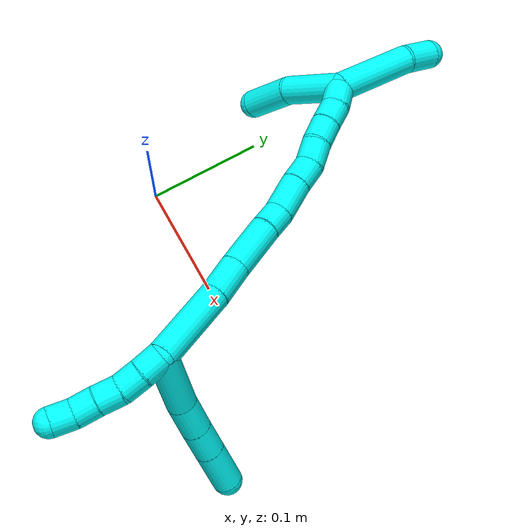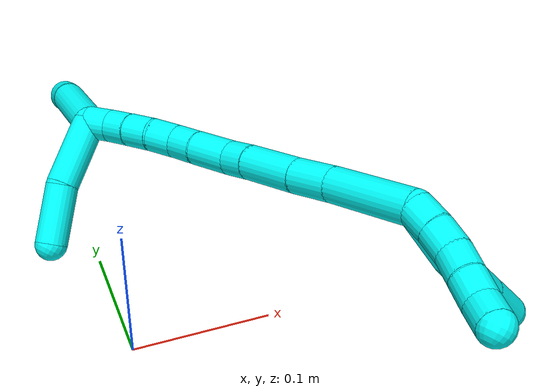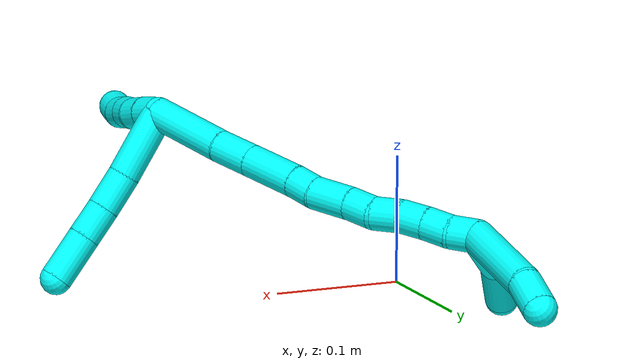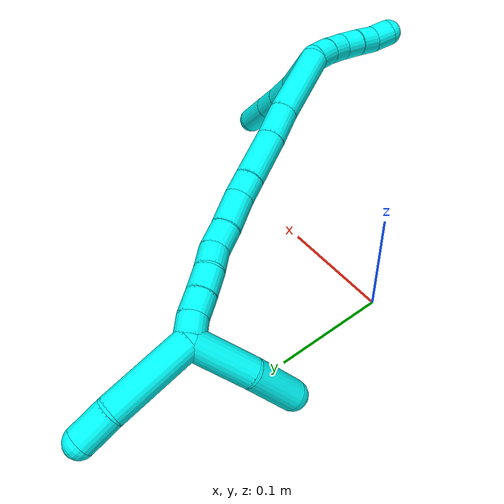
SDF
<sdf version="1.7">
 <world name="default">
  <model name="photoneo_s_sensor">
   <static>1</static>
   <pose>0 0 2 1.57079 1.57079 3.14159</pose>
   <link name="link">
    <inertial><mass>0.1</mass></inertial>
    <sensor name="sensor" type="depth">
     <update_rate>30</update_rate>
     <camera>
      <horizontal_fov>1.22</horizontal_fov>
      <image><width>1920</width><height>1200</height><format>B8G8R8</format></image>
      <clip><near>0.1</near><far>4</far></clip>
      <depth_camera><output>points</output></depth_camera>
     </camera>
     <plugin name="camera_plugin" filename="libgazebo_ros_depth_camera.so">
      <baseline>0.2</baseline>
      <alwaysOn>1</alwaysOn>
      <updateRate>0.0</updateRate>
      <cameraName>camera_ir</cameraName>
      <imageTopicName>/camera/color/image_raw</imageTopicName>
      <cameraInfoTopicName>/camera/color/camera_info</cameraInfoTopicName>
      <depthImageTopicName>/camera/depth/image_raw</depthImageTopicName>
      <depthImageCameraInfoTopicName>/camera/depth/camera_info</depthImageCameraInfoTopicName>
      <pointCloudTopicName>/camera/depth/points</pointCloudTopicName>
      <frameName>fr_optical</frameName>
      <pointCloudCutoff>0.1</pointCloudCutoff>
      <pointCloudCutoffMax>2.0</pointCloudCutoffMax>
      <distortionK1>0</distortionK1>
      <distortionK2>0</distortionK2>
      <distortionK3>0</distortionK3>
      <distortionT1>0</distortionT1>
      <distortionT2>0</distortionT2>
      <CxPrime>0</CxPrime>
      <Cx>0</Cx>
      <Cy>0</Cy>
      <focalLength>0</focalLength>
      <hackBaseline>0</hackBaseline>
     </plugin>
    </sensor>
   </link>
  </model>
  <model name="bin">
   <static>1</static>
   <link name="bottom">
    <collision name="collision-bottom">
     <pose>0 0 -0.01 0 -0 0</pose>
     <geometry><box><size>0.8 0.6 0.02</size></box></geometry>
     <surface>
      <friction><ode><mu>100</mu><mu2>100</mu2></ode></friction>
      <contact><collide_bitmask>65535</collide_bitmask></contact>
     </surface>
    </collision>
   </link>
   <link name="west_wall">
    <collision name="collision-west_wall">
     <pose>-0.41 0 0.1 0 -0 0</pose>
     <geometry><box><size>0.02 0.6 0.2</size></box></geometry>
     <surface>
      <friction><ode><mu>100</mu><mu2>100</mu2></ode></friction>
      <contact><collide_bitmask>65535</collide_bitmask></contact>
     </surface>
    </collision>
   </link>
   <link name="east_wall">
    <collision name="collision-east_wall">
     <pose>0.41 0 0.1 0 -0 0</pose>
     <geometry><box><size>0.02 0.6 0.2</size></box></geometry>
     <surface>
      <friction><ode><mu>100</mu><mu2>100</mu2></ode></friction>
      <contact><collide_bitmask>65535</collide_bitmask></contact>
     </surface>
    </collision>
   </link>
   <link name="south_wall">
    <collision name="collision-south_wall">
     <pose>0 -0.31 0.1 0 -0 0</pose>
     <geometry><box><size>0.8 0.02 0.2</size></box></geometry>
     <surface>
      <friction><ode><mu>100</mu><mu2>100</mu2></ode></friction>
      <contact><collide_bitmask>65535</collide_bitmask></contact>
     </surface>
    </collision>
   </link>
   <link name="north_wall">
    <collision name="collision-north_wall">
     <pose>0 0.31 0.1 0 -0 0</pose>
     <geometry><box><size>0.8 0.02 0.2</size></box></geometry>
     <surface>
      <friction><ode><mu>100</mu><mu2>100</mu2></ode></friction>
      <contact><collide_bitmask>65535</collide_bitmask></contact>
     </surface>
    </collision>
   </link>
  </model>
  <model name="3">
   <static>0</static>
   <link name="3">
    <collision name="collision-cylinder-e_1_2_8">
     <pose>0.023646 0.012122 -0.006376 -2.05498 1.04578 -1.52417</pose>
     <geometry><cylinder><radius>0.0125</radius><length>0.054652</length></cylinder></geometry>
     <surface>
      <friction><ode><mu>1.16</mu><mu2>1.16</mu2><slip1>0</slip1><slip2>0</slip2></ode></friction>
      <contact><ode><kp>1e+06</kp><kd>1</kd><max_vel>0</max_vel><min_depth>0.001</min_depth></ode></contact>
     </surface>
    </collision>
    <visual name="visual-cylinder-e_1_2_8">
     <pose>0.023646 0.012122 -0.006376 -2.05498 1.04578 -1.52417</pose>
     <geometry><cylinder><radius>0.0125</radius><length>0.054652</length></cylinder></geometry>
     <material><ambient>0.003922 1 0.996078 1</ambient></material>
    </visual>
    <collision name="collision-cylinder-e_2_8_9">
     <pose>0.060475 0.031631 -0.014542 -1.80865 1.04784 -1.26714</pose>
     <geometry><cylinder><radius>0.0125</radius><length>0.030436</length></cylinder></geometry>
     <surface>
      <friction><ode><mu>1.16</mu><mu2>1.16</mu2><slip1>0</slip1><slip2>0</slip2></ode></friction>
      <contact><ode><kp>1e+06</kp><kd>1</kd><max_vel>0</max_vel><min_depth>0.001</min_depth></ode></contact>
     </surface>
    </collision>
    <visual name="visual-cylinder-e_2_8_9">
     <pose>0.060475 0.031631 -0.014542 -1.80865 1.04784 -1.26714</pose>
     <geometry><cylinder><radius>0.0125</radius><length>0.030436</length></cylinder></geometry>
     <material><ambient>0.003922 1 0.996078 1</ambient></material>
    </visual>
    <collision name="collision-cylinder-e_3_9_10">
     <pose>0.085239 0.045498 -0.017326 -1.72296 1.05562 -1.19325</pose>
     <geometry><cylinder><radius>0.0125</radius><length>0.026613</length></cylinder></geometry>
     <surface>
      <friction><ode><mu>1.16</mu><mu2>1.16</mu2><slip1>0</slip1><slip2>0</slip2></ode></friction>
      <contact><ode><kp>1e+06</kp><kd>1</kd><max_vel>0</max_vel><min_depth>0.001</min_depth></ode></contact>
     </surface>
    </collision>
    <visual name="visual-cylinder-e_3_9_10">
     <pose>0.085239 0.045498 -0.017326 -1.72296 1.05562 -1.19325</pose>
     <geometry><cylinder><radius>0.0125</radius><length>0.026613</length></cylinder></geometry>
     <material><ambient>0.003922 1 0.996078 1</ambient></material>
    </visual>
    <collision name="collision-cylinder-e_4_10_6">
     <pose>0.113486 0.0613 -0.019733 -1.72121 1.05601 -1.19202</pose>
     <geometry><cylinder><radius>0.0125</radius><length>0.038299</length></cylinder></geometry>
     <surface>
      <friction><ode><mu>1.16</mu><mu2>1.16</mu2><slip1>0</slip1><slip2>0</slip2></ode></friction>
      <contact><ode><kp>1e+06</kp><kd>1</kd><max_vel>0</max_vel><min_depth>0.001</min_depth></ode></contact>
     </surface>
    </collision>
    <visual name="visual-cylinder-e_4_10_6">
     <pose>0.113486 0.0613 -0.019733 -1.72121 1.05601 -1.19202</pose>
     <geometry><cylinder><radius>0.0125</radius><length>0.038299</length></cylinder></geometry>
     <material><ambient>0.003922 1 0.996078 1</ambient></material>
    </visual>
    <collision name="collision-cylinder-e_1_2_11">
     <pose>0.005494 -0.007484 -0.003716 2.03167 0.581682 0.899631</pose>
     <geometry><cylinder><radius>0.0125</radius><length>0.02</length></cylinder></geometry>
     <surface>
      <friction><ode><mu>1.16</mu><mu2>1.16</mu2><slip1>0</slip1><slip2>0</slip2></ode></friction>
      <contact><ode><kp>1e+06</kp><kd>1</kd><max_vel>0</max_vel><min_depth>0.001</min_depth></ode></contact>
     </surface>
    </collision>
    <visual name="visual-cylinder-e_1_2_11">
     <pose>0.005494 -0.007484 -0.003716 2.03167 0.581682 0.899631</pose>
     <geometry><cylinder><radius>0.0125</radius><length>0.02</length></cylinder></geometry>
     <material><ambient>0.003922 1 0.996078 1</ambient></material>
    </visual>
    <collision name="collision-cylinder-e_2_11_12">
     <pose>0.016413 -0.022021 -0.011995 2.14497 0.573285 0.992939</pose>
     <geometry><cylinder><radius>0.0125</radius><length>0.02</length></cylinder></geometry>
     <surface>
      <friction><ode><mu>1.16</mu><mu2>1.16</mu2><slip1>0</slip1><slip2>0</slip2></ode></friction>
      <contact><ode><kp>1e+06</kp><kd>1</kd><max_vel>0</max_vel><min_depth>0.001</min_depth></ode></contact>
     </surface>
    </collision>
    <visual name="visual-cylinder-e_2_11_12">
     <pose>0.016413 -0.022021 -0.011995 2.14497 0.573285 0.992939</pose>
     <geometry><cylinder><radius>0.0125</radius><length>0.02</length></cylinder></geometry>
     <material><ambient>0.003922 1 0.996078 1</ambient></material>
    </visual>
    <collision name="collision-cylinder-e_3_12_13">
     <pose>0.025227 -0.03681 -0.021913 2.17639 0.345859 0.643616</pose>
     <geometry><cylinder><radius>0.0125</radius><length>0.02</length></cylinder></geometry>
     <surface>
      <friction><ode><mu>1.16</mu><mu2>1.16</mu2><slip1>0</slip1><slip2>0</slip2></ode></friction>
      <contact><ode><kp>1e+06</kp><kd>1</kd><max_vel>0</max_vel><min_depth>0.001</min_depth></ode></contact>
     </surface>
    </collision>
    <visual name="visual-cylinder-e_3_12_13">
     <pose>0.025227 -0.03681 -0.021913 2.17639 0.345859 0.643616</pose>
     <geometry><cylinder><radius>0.0125</radius><length>0.02</length></cylinder></geometry>
     <material><ambient>0.003922 1 0.996078 1</ambient></material>
    </visual>
    <collision name="collision-cylinder-e_4_13_14">
     <pose>0.03265 -0.051849 -0.03278 2.21717 0.415195 0.799982</pose>
     <geometry><cylinder><radius>0.0125</radius><length>0.02</length></cylinder></geometry>
     <surface>
      <friction><ode><mu>1.16</mu><mu2>1.16</mu2><slip1>0</slip1><slip2>0</slip2></ode></friction>
      <contact><ode><kp>1e+06</kp><kd>1</kd><max_vel>0</max_vel><min_depth>0.001</min_depth></ode></contact>
     </surface>
    </collision>
    <visual name="visual-cylinder-e_4_13_14">
     <pose>0.03265 -0.051849 -0.03278 2.21717 0.415195 0.799982</pose>
     <geometry><cylinder><radius>0.0125</radius><length>0.02</length></cylinder></geometry>
     <material><ambient>0.003922 1 0.996078 1</ambient></material>
    </visual>
    <collision name="collision-cylinder-e_5_14_5">
     <pose>0.038632 -0.067892 -0.042746 2.04224 0.196054 0.318316</pose>
     <geometry><cylinder><radius>0.0125</radius><length>0.02</length></cylinder></geometry>
     <surface>
      <friction><ode><mu>1.16</mu><mu2>1.16</mu2><slip1>0</slip1><slip2>0</slip2></ode></friction>
      <contact><ode><kp>1e+06</kp><kd>1</kd><max_vel>0</max_vel><min_depth>0.001</min_depth></ode></contact>
     </surface>
    </collision>
    <visual name="visual-cylinder-e_5_14_5">
     <pose>0.038632 -0.067892 -0.042746 2.04224 0.196054 0.318316</pose>
     <geometry><cylinder><radius>0.0125</radius><length>0.02</length></cylinder></geometry>
     <material><ambient>0.003922 1 0.996078 1</ambient></material>
    </visual>
    <collision name="collision-cylinder-e_1_2_15">
     <pose>-0.016501 0.029881 -0.001934 -1.63543 -0.503657 0.535769</pose>
     <geometry><cylinder><radius>0.0125</radius><length>0.068379</length></cylinder></geometry>
     <surface>
      <friction><ode><mu>1.16</mu><mu2>1.16</mu2><slip1>0</slip1><slip2>0</slip2></ode></friction>
      <contact><ode><kp>1e+06</kp><kd>1</kd><max_vel>0</max_vel><min_depth>0.001</min_depth></ode></contact>
     </surface>
    </collision>
    <visual name="visual-cylinder-e_1_2_15">
     <pose>-0.016501 0.029881 -0.001934 -1.63543 -0.503657 0.535769</pose>
     <geometry><cylinder><radius>0.0125</radius><length>0.068379</length></cylinder></geometry>
     <material><ambient>0.003922 1 0.996078 1</ambient></material>
    </visual>
    <collision name="collision-cylinder-e_2_15_16">
     <pose>-0.041335 0.072961 -0.005551 -1.69764 -0.559519 0.630738</pose>
     <geometry><cylinder><radius>0.0125</radius><length>0.031399</length></cylinder></geometry>
     <surface>
      <friction><ode><mu>1.16</mu><mu2>1.16</mu2><slip1>0</slip1><slip2>0</slip2></ode></friction>
      <contact><ode><kp>1e+06</kp><kd>1</kd><max_vel>0</max_vel><min_depth>0.001</min_depth></ode></contact>
     </surface>
    </collision>
    <visual name="visual-cylinder-e_2_15_16">
     <pose>-0.041335 0.072961 -0.005551 -1.69764 -0.559519 0.630738</pose>
     <geometry><cylinder><radius>0.0125</radius><length>0.031399</length></cylinder></geometry>
     <material><ambient>0.003922 1 0.996078 1</ambient></material>
    </visual>
    <collision name="collision-cylinder-e_3_16_17">
     <pose>-0.061155 0.104968 -0.008715 -1.64934 -0.54692 0.589202</pose>
     <geometry><cylinder><radius>0.0125</radius><length>0.044178</length></cylinder></geometry>
     <surface>
      <friction><ode><mu>1.16</mu><mu2>1.16</mu2><slip1>0</slip1><slip2>0</slip2></ode></friction>
      <contact><ode><kp>1e+06</kp><kd>1</kd><max_vel>0</max_vel><min_depth>0.001</min_depth></ode></contact>
     </surface>
    </collision>
    <visual name="visual-cylinder-e_3_16_17">
     <pose>-0.061155 0.104968 -0.008715 -1.64934 -0.54692 0.589202</pose>
     <geometry><cylinder><radius>0.0125</radius><length>0.044178</length></cylinder></geometry>
     <material><ambient>0.003922 1 0.996078 1</ambient></material>
    </visual>
    <collision name="collision-cylinder-e_4_17_18">
     <pose>-0.077331 0.132647 -0.011119 -1.67459 -0.483975 0.534635</pose>
     <geometry><cylinder><radius>0.0125</radius><length>0.020151</length></cylinder></geometry>
     <surface>
      <friction><ode><mu>1.16</mu><mu2>1.16</mu2><slip1>0</slip1><slip2>0</slip2></ode></friction>
      <contact><ode><kp>1e+06</kp><kd>1</kd><max_vel>0</max_vel><min_depth>0.001</min_depth></ode></contact>
     </surface>
    </collision>
    <visual name="visual-cylinder-e_4_17_18">
     <pose>-0.077331 0.132647 -0.011119 -1.67459 -0.483975 0.534635</pose>
     <geometry><cylinder><radius>0.0125</radius><length>0.020151</length></cylinder></geometry>
     <material><ambient>0.003922 1 0.996078 1</ambient></material>
    </visual>
    <collision name="collision-cylinder-e_5_18_19">
     <pose>-0.091993 0.153798 -0.013464 -1.68598 -0.678853 0.754621</pose>
     <geometry><cylinder><radius>0.0125</radius><length>0.031769</length></cylinder></geometry>
     <surface>
      <friction><ode><mu>1.16</mu><mu2>1.16</mu2><slip1>0</slip1><slip2>0</slip2></ode></friction>
      <contact><ode><kp>1e+06</kp><kd>1</kd><max_vel>0</max_vel><min_depth>0.001</min_depth></ode></contact>
     </surface>
    </collision>
    <visual name="visual-cylinder-e_5_18_19">
     <pose>-0.091993 0.153798 -0.013464 -1.68598 -0.678853 0.754621</pose>
     <geometry><cylinder><radius>0.0125</radius><length>0.031769</length></cylinder></geometry>
     <material><ambient>0.003922 1 0.996078 1</ambient></material>
    </visual>
    <collision name="collision-cylinder-e_6_19_20">
     <pose>-0.108053 0.175159 -0.015583 -1.64756 -0.589134 0.63321</pose>
     <geometry><cylinder><radius>0.0125</radius><length>0.021907</length></cylinder></geometry>
     <surface>
      <friction><ode><mu>1.16</mu><mu2>1.16</mu2><slip1>0</slip1><slip2>0</slip2></ode></friction>
      <contact><ode><kp>1e+06</kp><kd>1</kd><max_vel>0</max_vel><min_depth>0.001</min_depth></ode></contact>
     </surface>
    </collision>
    <visual name="visual-cylinder-e_6_19_20">
     <pose>-0.108053 0.175159 -0.015583 -1.64756 -0.589134 0.63321</pose>
     <geometry><cylinder><radius>0.0125</radius><length>0.021907</length></cylinder></geometry>
     <material><ambient>0.003922 1 0.996078 1</ambient></material>
    </visual>
    <collision name="collision-cylinder-e_7_20_21">
     <pose>-0.122386 0.19078 -0.01778 -1.79604 -0.887814 1.0762</pose>
     <geometry><cylinder><radius>0.0125</radius><length>0.021263</length></cylinder></geometry>
     <surface>
      <friction><ode><mu>1.16</mu><mu2>1.16</mu2><slip1>0</slip1><slip2>0</slip2></ode></friction>
      <contact><ode><kp>1e+06</kp><kd>1</kd><max_vel>0</max_vel><min_depth>0.001</min_depth></ode></contact>
     </surface>
    </collision>
    <visual name="visual-cylinder-e_7_20_21">
     <pose>-0.122386 0.19078 -0.01778 -1.79604 -0.887814 1.0762</pose>
     <geometry><cylinder><radius>0.0125</radius><length>0.021263</length></cylinder></geometry>
     <material><ambient>0.003922 1 0.996078 1</ambient></material>
    </visual>
    <collision name="collision-cylinder-e_8_21_22">
     <pose>-0.137484 0.205064 -0.020924 -1.78015 -0.713335 0.862421</pose>
     <geometry><cylinder><radius>0.0125</radius><length>0.020939</length></cylinder></geometry>
     <surface>
      <friction><ode><mu>1.16</mu><mu2>1.16</mu2><slip1>0</slip1><slip2>0</slip2></ode></friction>
      <contact><ode><kp>1e+06</kp><kd>1</kd><max_vel>0</max_vel><min_depth>0.001</min_depth></ode></contact>
     </surface>
    </collision>
    <visual name="visual-cylinder-e_8_21_22">
     <pose>-0.137484 0.205064 -0.020924 -1.78015 -0.713335 0.862421</pose>
     <geometry><cylinder><radius>0.0125</radius><length>0.020939</length></cylinder></geometry>
     <material><ambient>0.003922 1 0.996078 1</ambient></material>
    </visual>
    <collision name="collision-cylinder-e_9_22_23">
     <pose>-0.150419 0.220602 -0.024093 -1.76381 -0.653721 0.781094</pose>
     <geometry><cylinder><radius>0.0125</radius><length>0.020008</length></cylinder></geometry>
     <surface>
      <friction><ode><mu>1.16</mu><mu2>1.16</mu2><slip1>0</slip1><slip2>0</slip2></ode></friction>
      <contact><ode><kp>1e+06</kp><kd>1</kd><max_vel>0</max_vel><min_depth>0.001</min_depth></ode></contact>
     </surface>
    </collision>
    <visual name="visual-cylinder-e_9_22_23">
     <pose>-0.150419 0.220602 -0.024093 -1.76381 -0.653721 0.781094</pose>
     <geometry><cylinder><radius>0.0125</radius><length>0.020008</length></cylinder></geometry>
     <material><ambient>0.003922 1 0.996078 1</ambient></material>
    </visual>
    <collision name="collision-cylinder-e_10_23_1">
     <pose>-0.164037 0.234524 -0.028015 -1.94395 -0.852862 1.17473</pose>
     <geometry><cylinder><radius>0.0125</radius><length>0.020007</length></cylinder></geometry>
     <surface>
      <friction><ode><mu>1.16</mu><mu2>1.16</mu2><slip1>0</slip1><slip2>0</slip2></ode></friction>
      <contact><ode><kp>1e+06</kp><kd>1</kd><max_vel>0</max_vel><min_depth>0.001</min_depth></ode></contact>
     </surface>
    </collision>
    <visual name="visual-cylinder-e_10_23_1">
     <pose>-0.164037 0.234524 -0.028015 -1.94395 -0.852862 1.17473</pose>
     <geometry><cylinder><radius>0.0125</radius><length>0.020007</length></cylinder></geometry>
     <material><ambient>0.003922 1 0.996078 1</ambient></material>
    </visual>
    <collision name="collision-cylinder-e_1_1_24">
     <pose>-0.170046 0.235814 -0.057015 2.96168 0.056346 0.605628</pose>
     <geometry><cylinder><radius>0.0125</radius><length>0.054161</length></cylinder></geometry>
     <surface>
      <friction><ode><mu>1.16</mu><mu2>1.16</mu2><slip1>0</slip1><slip2>0</slip2></ode></friction>
      <contact><ode><kp>1e+06</kp><kd>1</kd><max_vel>0</max_vel><min_depth>0.001</min_depth></ode></contact>
     </surface>
    </collision>
    <visual name="visual-cylinder-e_1_1_24">
     <pose>-0.170046 0.235814 -0.057015 2.96168 0.056346 0.605628</pose>
     <geometry><cylinder><radius>0.0125</radius><length>0.054161</length></cylinder></geometry>
     <material><ambient>0.003922 1 0.996078 1</ambient></material>
    </visual>
    <collision name="collision-cylinder-e_2_24_4">
     <pose>-0.161926 0.229162 -0.105492 3.05888 0.291851 2.59271</pose>
     <geometry><cylinder><radius>0.0125</radius><length>0.045839</length></cylinder></geometry>
     <surface>
      <friction><ode><mu>1.16</mu><mu2>1.16</mu2><slip1>0</slip1><slip2>0</slip2></ode></friction>
      <contact><ode><kp>1e+06</kp><kd>1</kd><max_vel>0</max_vel><min_depth>0.001</min_depth></ode></contact>
     </surface>
    </collision>
    <visual name="visual-cylinder-e_2_24_4">
     <pose>-0.161926 0.229162 -0.105492 3.05888 0.291851 2.59271</pose>
     <geometry><cylinder><radius>0.0125</radius><length>0.045839</length></cylinder></geometry>
     <material><ambient>0.003922 1 0.996078 1</ambient></material>
    </visual>
    <collision name="collision-cylinder-e_1_1_25">
     <pose>-0.17953 0.274793 -0.022968 -1.35607 -0.223938 0.180628</pose>
     <geometry><cylinder><radius>0.0125</radius><length>0.071676</length></cylinder></geometry>
     <surface>
      <friction><ode><mu>1.16</mu><mu2>1.16</mu2><slip1>0</slip1><slip2>0</slip2></ode></friction>
      <contact><ode><kp>1e+06</kp><kd>1</kd><max_vel>0</max_vel><min_depth>0.001</min_depth></ode></contact>
     </surface>
    </collision>
    <visual name="visual-cylinder-e_1_1_25">
     <pose>-0.17953 0.274793 -0.022968 -1.35607 -0.223938 0.180628</pose>
     <geometry><cylinder><radius>0.0125</radius><length>0.071676</length></cylinder></geometry>
     <material><ambient>0.003922 1 0.996078 1</ambient></material>
    </visual>
    <collision name="collision-cylinder-e_2_25_3">
     <pose>-0.188058 0.32302 -0.014181 -1.47587 -0.040259 0.036609</pose>
     <geometry><cylinder><radius>0.0125</radius><length>0.028324</length></cylinder></geometry>
     <surface>
      <friction><ode><mu>1.16</mu><mu2>1.16</mu2><slip1>0</slip1><slip2>0</slip2></ode></friction>
      <contact><ode><kp>1e+06</kp><kd>1</kd><max_vel>0</max_vel><min_depth>0.001</min_depth></ode></contact>
     </surface>
    </collision>
    <visual name="visual-cylinder-e_2_25_3">
     <pose>-0.188058 0.32302 -0.014181 -1.47587 -0.040259 0.036609</pose>
     <geometry><cylinder><radius>0.0125</radius><length>0.028324</length></cylinder></geometry>
     <material><ambient>0.003922 1 0.996078 1</ambient></material>
    </visual>
    <collision name="collision-sphere-3">
     <pose>-0.188628 0.337107 -0.01284 0 -0 0</pose>
     <geometry><sphere><radius>0.0125</radius></sphere></geometry>
     <surface>
      <friction><ode><mu>1.16</mu><mu2>1.16</mu2><slip1>0</slip1><slip2>0</slip2></ode></friction>
      <contact><ode><kp>1e+06</kp><kd>1</kd><max_vel>0</max_vel><min_depth>0.001</min_depth></ode></contact>
     </surface>
    </collision>
    <visual name="visual-sphere-3">
     <pose>-0.188628 0.337107 -0.01284 0 -0 0</pose>
     <geometry><sphere><radius>0.0125</radius></sphere></geometry>
     <material><ambient>0.003922 1 0.996078 1</ambient></material>
    </visual>
    <collision name="collision-sphere-25">
     <pose>-0.187488 0.308933 -0.015523 0 -0 0</pose>
     <geometry><sphere><radius>0.0125</radius></sphere></geometry>
     <surface>
      <friction><ode><mu>1.16</mu><mu2>1.16</mu2><slip1>0</slip1><slip2>0</slip2></ode></friction>
      <contact><ode><kp>1e+06</kp><kd>1</kd><max_vel>0</max_vel><min_depth>0.001</min_depth></ode></contact>
     </surface>
    </collision>
    <visual name="visual-sphere-25">
     <pose>-0.187488 0.308933 -0.015523 0 -0 0</pose>
     <geometry><sphere><radius>0.0125</radius></sphere></geometry>
     <material><ambient>0.003922 1 0.996078 1</ambient></material>
    </visual>
    <collision name="collision-sphere-4">
     <pose>-0.155332 0.227349 -0.127367 0 -0 0</pose>
     <geometry><sphere><radius>0.0125</radius></sphere></geometry>
     <surface>
      <friction><ode><mu>1.16</mu><mu2>1.16</mu2><slip1>0</slip1><slip2>0</slip2></ode></friction>
      <contact><ode><kp>1e+06</kp><kd>1</kd><max_vel>0</max_vel><min_depth>0.001</min_depth></ode></contact>
     </surface>
    </collision>
    <visual name="visual-sphere-4">
     <pose>-0.155332 0.227349 -0.127367 0 -0 0</pose>
     <geometry><sphere><radius>0.0125</radius></sphere></geometry>
     <material><ambient>0.003922 1 0.996078 1</ambient></material>
    </visual>
    <collision name="collision-sphere-24">
     <pose>-0.168521 0.230975 -0.083616 0 -0 0</pose>
     <geometry><sphere><radius>0.0125</radius></sphere></geometry>
     <surface>
      <friction><ode><mu>1.16</mu><mu2>1.16</mu2><slip1>0</slip1><slip2>0</slip2></ode></friction>
      <contact><ode><kp>1e+06</kp><kd>1</kd><max_vel>0</max_vel><min_depth>0.001</min_depth></ode></contact>
     </surface>
    </collision>
    <visual name="visual-sphere-24">
     <pose>-0.168521 0.230975 -0.083616 0 -0 0</pose>
     <geometry><sphere><radius>0.0125</radius></sphere></geometry>
     <material><ambient>0.003922 1 0.996078 1</ambient></material>
    </visual>
    <collision name="collision-sphere-1">
     <pose>-0.171571 0.240652 -0.030414 0 -0 0</pose>
     <geometry><sphere><radius>0.0125</radius></sphere></geometry>
     <surface>
      <friction><ode><mu>1.16</mu><mu2>1.16</mu2><slip1>0</slip1><slip2>0</slip2></ode></friction>
      <contact><ode><kp>1e+06</kp><kd>1</kd><max_vel>0</max_vel><min_depth>0.001</min_depth></ode></contact>
     </surface>
    </collision>
    <visual name="visual-sphere-1">
     <pose>-0.171571 0.240652 -0.030414 0 -0 0</pose>
     <geometry><sphere><radius>0.0125</radius></sphere></geometry>
     <material><ambient>0.003922 1 0.996078 1</ambient></material>
    </visual>
    <collision name="collision-sphere-23">
     <pose>-0.156503 0.228396 -0.025616 0 -0 0</pose>
     <geometry><sphere><radius>0.0125</radius></sphere></geometry>
     <surface>
      <friction><ode><mu>1.16</mu><mu2>1.16</mu2><slip1>0</slip1><slip2>0</slip2></ode></friction>
      <contact><ode><kp>1e+06</kp><kd>1</kd><max_vel>0</max_vel><min_depth>0.001</min_depth></ode></contact>
     </surface>
    </collision>
    <visual name="visual-sphere-23">
     <pose>-0.156503 0.228396 -0.025616 0 -0 0</pose>
     <geometry><sphere><radius>0.0125</radius></sphere></geometry>
     <material><ambient>0.003922 1 0.996078 1</ambient></material>
    </visual>
    <collision name="collision-sphere-22">
     <pose>-0.144335 0.212808 -0.02257 0 -0 0</pose>
     <geometry><sphere><radius>0.0125</radius></sphere></geometry>
     <surface>
      <friction><ode><mu>1.16</mu><mu2>1.16</mu2><slip1>0</slip1><slip2>0</slip2></ode></friction>
      <contact><ode><kp>1e+06</kp><kd>1</kd><max_vel>0</max_vel><min_depth>0.001</min_depth></ode></contact>
     </surface>
    </collision>
    <visual name="visual-sphere-22">
     <pose>-0.144335 0.212808 -0.02257 0 -0 0</pose>
     <geometry><sphere><radius>0.0125</radius></sphere></geometry>
     <material><ambient>0.003922 1 0.996078 1</ambient></material>
    </visual>
    <collision name="collision-sphere-21">
     <pose>-0.130633 0.19732 -0.019279 0 -0 0</pose>
     <geometry><sphere><radius>0.0125</radius></sphere></geometry>
     <surface>
      <friction><ode><mu>1.16</mu><mu2>1.16</mu2><slip1>0</slip1><slip2>0</slip2></ode></friction>
      <contact><ode><kp>1e+06</kp><kd>1</kd><max_vel>0</max_vel><min_depth>0.001</min_depth></ode></contact>
     </surface>
    </collision>
    <visual name="visual-sphere-21">
     <pose>-0.130633 0.19732 -0.019279 0 -0 0</pose>
     <geometry><sphere><radius>0.0125</radius></sphere></geometry>
     <material><ambient>0.003922 1 0.996078 1</ambient></material>
    </visual>
    <collision name="collision-sphere-11">
     <pose>0.010989 -0.014967 -0.007432 0 -0 0</pose>
     <geometry><sphere><radius>0.0125</radius></sphere></geometry>
     <surface>
      <friction><ode><mu>1.16</mu><mu2>1.16</mu2><slip1>0</slip1><slip2>0</slip2></ode></friction>
      <contact><ode><kp>1e+06</kp><kd>1</kd><max_vel>0</max_vel><min_depth>0.001</min_depth></ode></contact>
     </surface>
    </collision>
    <visual name="visual-sphere-11">
     <pose>0.010989 -0.014967 -0.007432 0 -0 0</pose>
     <geometry><sphere><radius>0.0125</radius></sphere></geometry>
     <material><ambient>0.003922 1 0.996078 1</ambient></material>
    </visual>
    <collision name="collision-sphere-6">
     <pose>0.130154 0.070621 -0.021146 0 -0 0</pose>
     <geometry><sphere><radius>0.0125</radius></sphere></geometry>
     <surface>
      <friction><ode><mu>1.16</mu><mu2>1.16</mu2><slip1>0</slip1><slip2>0</slip2></ode></friction>
      <contact><ode><kp>1e+06</kp><kd>1</kd><max_vel>0</max_vel><min_depth>0.001</min_depth></ode></contact>
     </surface>
    </collision>
    <visual name="visual-sphere-6">
     <pose>0.130154 0.070621 -0.021146 0 -0 0</pose>
     <geometry><sphere><radius>0.0125</radius></sphere></geometry>
     <material><ambient>0.003922 1 0.996078 1</ambient></material>
    </visual>
    <collision name="collision-sphere-10">
     <pose>0.096818 0.051978 -0.01832 0 -0 0</pose>
     <geometry><sphere><radius>0.0125</radius></sphere></geometry>
     <surface>
      <friction><ode><mu>1.16</mu><mu2>1.16</mu2><slip1>0</slip1><slip2>0</slip2></ode></friction>
      <contact><ode><kp>1e+06</kp><kd>1</kd><max_vel>0</max_vel><min_depth>0.001</min_depth></ode></contact>
     </surface>
    </collision>
    <visual name="visual-sphere-10">
     <pose>0.096818 0.051978 -0.01832 0 -0 0</pose>
     <geometry><sphere><radius>0.0125</radius></sphere></geometry>
     <material><ambient>0.003922 1 0.996078 1</ambient></material>
    </visual>
    <collision name="collision-sphere-9">
     <pose>0.07366 0.039017 -0.016333 0 -0 0</pose>
     <geometry><sphere><radius>0.0125</radius></sphere></geometry>
     <surface>
      <friction><ode><mu>1.16</mu><mu2>1.16</mu2><slip1>0</slip1><slip2>0</slip2></ode></friction>
      <contact><ode><kp>1e+06</kp><kd>1</kd><max_vel>0</max_vel><min_depth>0.001</min_depth></ode></contact>
     </surface>
    </collision>
    <visual name="visual-sphere-9">
     <pose>0.07366 0.039017 -0.016333 0 -0 0</pose>
     <geometry><sphere><radius>0.0125</radius></sphere></geometry>
     <material><ambient>0.003922 1 0.996078 1</ambient></material>
    </visual>
    <collision name="collision-sphere-2">
     <geometry><sphere><radius>0.0125</radius></sphere></geometry>
     <surface>
      <friction><ode><mu>1.16</mu><mu2>1.16</mu2><slip1>0</slip1><slip2>0</slip2></ode></friction>
      <contact><ode><kp>1e+06</kp><kd>1</kd><max_vel>0</max_vel><min_depth>0.001</min_depth></ode></contact>
     </surface>
    </collision>
    <visual name="visual-sphere-2">
     <geometry><sphere><radius>0.0125</radius></sphere></geometry>
     <material><ambient>0.003922 1 0.996078 1</ambient></material>
    </visual>
    <collision name="collision-sphere-19">
     <pose>-0.101967 0.166079 -0.014885 0 -0 0</pose>
     <geometry><sphere><radius>0.0125</radius></sphere></geometry>
     <surface>
      <friction><ode><mu>1.16</mu><mu2>1.16</mu2><slip1>0</slip1><slip2>0</slip2></ode></friction>
      <contact><ode><kp>1e+06</kp><kd>1</kd><max_vel>0</max_vel><min_depth>0.001</min_depth></ode></contact>
     </surface>
    </collision>
    <visual name="visual-sphere-19">
     <pose>-0.101967 0.166079 -0.014885 0 -0 0</pose>
     <geometry><sphere><radius>0.0125</radius></sphere></geometry>
     <material><ambient>0.003922 1 0.996078 1</ambient></material>
    </visual>
    <collision name="collision-sphere-8">
     <pose>0.047291 0.024244 -0.012751 0 -0 0</pose>
     <geometry><sphere><radius>0.0125</radius></sphere></geometry>
     <surface>
      <friction><ode><mu>1.16</mu><mu2>1.16</mu2><slip1>0</slip1><slip2>0</slip2></ode></friction>
      <contact><ode><kp>1e+06</kp><kd>1</kd><max_vel>0</max_vel><min_depth>0.001</min_depth></ode></contact>
     </surface>
    </collision>
    <visual name="visual-sphere-8">
     <pose>0.047291 0.024244 -0.012751 0 -0 0</pose>
     <geometry><sphere><radius>0.0125</radius></sphere></geometry>
     <material><ambient>0.003922 1 0.996078 1</ambient></material>
    </visual>
    <collision name="collision-sphere-12">
     <pose>0.021837 -0.029075 -0.016558 0 -0 0</pose>
     <geometry><sphere><radius>0.0125</radius></sphere></geometry>
     <surface>
      <friction><ode><mu>1.16</mu><mu2>1.16</mu2><slip1>0</slip1><slip2>0</slip2></ode></friction>
      <contact><ode><kp>1e+06</kp><kd>1</kd><max_vel>0</max_vel><min_depth>0.001</min_depth></ode></contact>
     </surface>
    </collision>
    <visual name="visual-sphere-12">
     <pose>0.021837 -0.029075 -0.016558 0 -0 0</pose>
     <geometry><sphere><radius>0.0125</radius></sphere></geometry>
     <material><ambient>0.003922 1 0.996078 1</ambient></material>
    </visual>
    <collision name="collision-sphere-13">
     <pose>0.028617 -0.044545 -0.027269 0 -0 0</pose>
     <geometry><sphere><radius>0.0125</radius></sphere></geometry>
     <surface>
      <friction><ode><mu>1.16</mu><mu2>1.16</mu2><slip1>0</slip1><slip2>0</slip2></ode></friction>
      <contact><ode><kp>1e+06</kp><kd>1</kd><max_vel>0</max_vel><min_depth>0.001</min_depth></ode></contact>
     </surface>
    </collision>
    <visual name="visual-sphere-13">
     <pose>0.028617 -0.044545 -0.027269 0 -0 0</pose>
     <geometry><sphere><radius>0.0125</radius></sphere></geometry>
     <material><ambient>0.003922 1 0.996078 1</ambient></material>
    </visual>
    <collision name="collision-sphere-14">
     <pose>0.036684 -0.059154 -0.038291 0 -0 0</pose>
     <geometry><sphere><radius>0.0125</radius></sphere></geometry>
     <surface>
      <friction><ode><mu>1.16</mu><mu2>1.16</mu2><slip1>0</slip1><slip2>0</slip2></ode></friction>
      <contact><ode><kp>1e+06</kp><kd>1</kd><max_vel>0</max_vel><min_depth>0.001</min_depth></ode></contact>
     </surface>
    </collision>
    <visual name="visual-sphere-14">
     <pose>0.036684 -0.059154 -0.038291 0 -0 0</pose>
     <geometry><sphere><radius>0.0125</radius></sphere></geometry>
     <material><ambient>0.003922 1 0.996078 1</ambient></material>
    </visual>
    <collision name="collision-sphere-5">
     <pose>0.04058 -0.076631 -0.047201 0 -0 0</pose>
     <geometry><sphere><radius>0.0125</radius></sphere></geometry>
     <surface>
      <friction><ode><mu>1.16</mu><mu2>1.16</mu2><slip1>0</slip1><slip2>0</slip2></ode></friction>
      <contact><ode><kp>1e+06</kp><kd>1</kd><max_vel>0</max_vel><min_depth>0.001</min_depth></ode></contact>
     </surface>
    </collision>
    <visual name="visual-sphere-5">
     <pose>0.04058 -0.076631 -0.047201 0 -0 0</pose>
     <geometry><sphere><radius>0.0125</radius></sphere></geometry>
     <material><ambient>0.003922 1 0.996078 1</ambient></material>
    </visual>
    <collision name="collision-sphere-15">
     <pose>-0.033002 0.059763 -0.003868 0 -0 0</pose>
     <geometry><sphere><radius>0.0125</radius></sphere></geometry>
     <surface>
      <friction><ode><mu>1.16</mu><mu2>1.16</mu2><slip1>0</slip1><slip2>0</slip2></ode></friction>
      <contact><ode><kp>1e+06</kp><kd>1</kd><max_vel>0</max_vel><min_depth>0.001</min_depth></ode></contact>
     </surface>
    </collision>
    <visual name="visual-sphere-15">
     <pose>-0.033002 0.059763 -0.003868 0 -0 0</pose>
     <geometry><sphere><radius>0.0125</radius></sphere></geometry>
     <material><ambient>0.003922 1 0.996078 1</ambient></material>
    </visual>
    <collision name="collision-sphere-16">
     <pose>-0.049668 0.08616 -0.007234 0 -0 0</pose>
     <geometry><sphere><radius>0.0125</radius></sphere></geometry>
     <surface>
      <friction><ode><mu>1.16</mu><mu2>1.16</mu2><slip1>0</slip1><slip2>0</slip2></ode></friction>
      <contact><ode><kp>1e+06</kp><kd>1</kd><max_vel>0</max_vel><min_depth>0.001</min_depth></ode></contact>
     </surface>
    </collision>
    <visual name="visual-sphere-16">
     <pose>-0.049668 0.08616 -0.007234 0 -0 0</pose>
     <geometry><sphere><radius>0.0125</radius></sphere></geometry>
     <material><ambient>0.003922 1 0.996078 1</ambient></material>
    </visual>
    <collision name="collision-sphere-17">
     <pose>-0.072643 0.123777 -0.010195 0 -0 0</pose>
     <geometry><sphere><radius>0.0125</radius></sphere></geometry>
     <surface>
      <friction><ode><mu>1.16</mu><mu2>1.16</mu2><slip1>0</slip1><slip2>0</slip2></ode></friction>
      <contact><ode><kp>1e+06</kp><kd>1</kd><max_vel>0</max_vel><min_depth>0.001</min_depth></ode></contact>
     </surface>
    </collision>
    <visual name="visual-sphere-17">
     <pose>-0.072643 0.123777 -0.010195 0 -0 0</pose>
     <geometry><sphere><radius>0.0125</radius></sphere></geometry>
     <material><ambient>0.003922 1 0.996078 1</ambient></material>
    </visual>
    <collision name="collision-sphere-18">
     <pose>-0.082019 0.141518 -0.012043 0 -0 0</pose>
     <geometry><sphere><radius>0.0125</radius></sphere></geometry>
     <surface>
      <friction><ode><mu>1.16</mu><mu2>1.16</mu2><slip1>0</slip1><slip2>0</slip2></ode></friction>
      <contact><ode><kp>1e+06</kp><kd>1</kd><max_vel>0</max_vel><min_depth>0.001</min_depth></ode></contact>
     </surface>
    </collision>
    <visual name="visual-sphere-18">
     <pose>-0.082019 0.141518 -0.012043 0 -0 0</pose>
     <geometry><sphere><radius>0.0125</radius></sphere></geometry>
     <material><ambient>0.003922 1 0.996078 1</ambient></material>
    </visual>
    <collision name="collision-sphere-20">
     <pose>-0.114139 0.18424 -0.016282 0 -0 0</pose>
     <geometry><sphere><radius>0.0125</radius></sphere></geometry>
     <surface>
      <friction><ode><mu>1.16</mu><mu2>1.16</mu2><slip1>0</slip1><slip2>0</slip2></ode></friction>
      <contact><ode><kp>1e+06</kp><kd>1</kd><max_vel>0</max_vel><min_depth>0.001</min_depth></ode></contact>
     </surface>
    </collision>
    <visual name="visual-sphere-20">
     <pose>-0.114139 0.18424 -0.016282 0 -0 0</pose>
     <geometry><sphere><radius>0.0125</radius></sphere></geometry>
     <material><ambient>0.003922 1 0.996078 1</ambient></material>
    </visual>
    <inertial>
     <pose>-0.061946 0.121878 -0.023715 0 -0 0</pose>
     <mass>0.75</mass>
     <inertia>
      <ixx>0.000121</ixx>
      <ixy>0</ixy>
      <ixz>0</ixz>
      <iyy>9.9e-05</iyy>
      <iyz>0</iyz>
      <izz>-9.3e-05</izz>
     </inertia>
    </inertial>
   </link>
   <pose>0.169211 -0.073104 0.133011 -0.689039 0.566635 -0.413196</pose>
  </model>
 </world>
</sdf>
